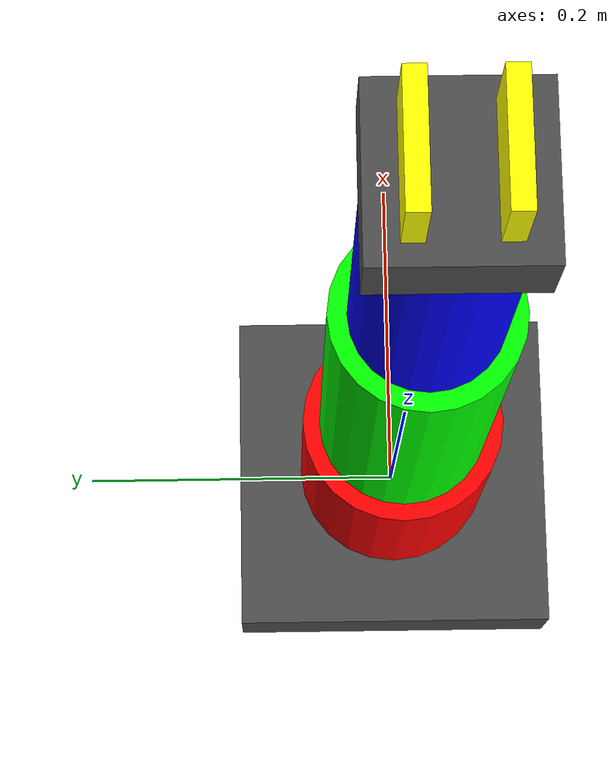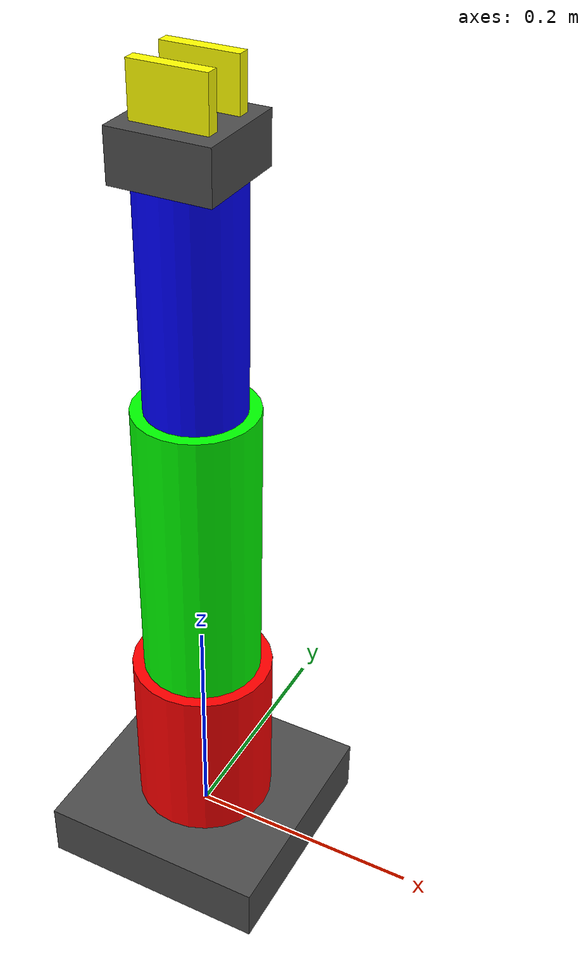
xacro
<?xml version="1.0"?>
<robot xmlns:xacro="http://www.ros.org/wiki/xacro" name="three_dof_arm_gripper">

  <xacro:property name="PI" value="3.141592653589793"/>

  <!-- World link (fixed reference) -->
  <link name="world"/>

  <!-- Fixed joint connecting world to base_link -->
  <joint name="world_joint" type="fixed">
    <parent link="world"/>
    <child link="base_link"/>
    <origin xyz="0 0 0" rpy="0 0 0"/>
  </joint>

  <!-- ########## Robot Base ########## -->
  <link name="base_link">
    <visual>
      <geometry>
        <box size="0.2 0.2 0.05"/>
      </geometry>
      <material name="dark_grey">
        <color rgba="0.3 0.3 0.3 1"/>
      </material>
    </visual>
    <collision>
      <geometry>
        <box size="0.2 0.2 0.05"/>
      </geometry>
    </collision>
    <inertial>
      <mass value="0.8"/>
      <inertia ixx="0.002" iyy="0.002" izz="0.002" ixy="0" ixz="0" iyz="0"/>
    </inertial>
  </link>

  <!-- Joint 1: base rotation (yaw) at top of base (Z = 0.025) -->
  <joint name="joint1" type="revolute">
    <parent link="base_link"/>
    <child link="link1"/>
    <axis xyz="0 0 1"/>
    <origin xyz="0 0 0.025" rpy="0 0 0"/>
    <limit lower="${-PI}" upper="${PI}" effort="100" velocity="1.5"/>
  </joint>

  <!-- Link 1: cylinder length 0.15, offset visual/collision to start at joint -->
  <link name="link1">
    <visual>
      <origin xyz="0 0 0.075" rpy="0 0 0"/>    <!-- half length up -->
      <geometry>
        <cylinder radius="0.06" length="0.15"/>
      </geometry>
      <material name="red">
        <color rgba="1 0 0 1"/>
      </material>
    </visual>
    <collision>
      <origin xyz="0 0 0.075" rpy="0 0 0"/>
      <geometry>
        <cylinder radius="0.06" length="0.15"/>
      </geometry>
    </collision>
    <inertial>
      <mass value="0.6"/>
      <inertia ixx="${0.6*(3*0.06*0.06 + 0.15*0.15)/12}"
               iyy="${0.6*(3*0.06*0.06 + 0.15*0.15)/12}"
               izz="${0.6*0.06*0.06/2}"
               ixy="0" ixz="0" iyz="0"/>
    </inertial>
  </link>

  <!-- Joint 2: shoulder pitch (horizontal Y axis), at top of link1 (Z = 0.15) -->
  <joint name="joint2" type="revolute">
    <parent link="link1"/>
    <child link="link2"/>
    <axis xyz="0 1 0"/>
    <origin xyz="0 0 0.15" rpy="0 0 0"/>    <!-- top of link1 (0.075 + 0.075) -->
    <limit lower="${-PI/2}" upper="${PI/2}" effort="80" velocity="1.5"/>
  </joint>

  <!-- Link 2: cylinder length 0.25, offset visual/collision -->
  <link name="link2">
    <visual>
      <origin xyz="0 0 0.125" rpy="0 0 0"/>   <!-- half length up -->
      <geometry>
        <cylinder radius="0.05" length="0.25"/>
      </geometry>
      <material name="green">
        <color rgba="0 1 0 1"/>
      </material>
    </visual>
    <collision>
      <origin xyz="0 0 0.125" rpy="0 0 0"/>
      <geometry>
        <cylinder radius="0.05" length="0.25"/>
      </geometry>
    </collision>
    <inertial>
      <mass value="0.8"/>
      <inertia ixx="${0.8*(3*0.05*0.05 + 0.25*0.25)/12}"
               iyy="${0.8*(3*0.05*0.05 + 0.25*0.25)/12}"
               izz="${0.8*0.05*0.05/2}"
               ixy="0" ixz="0" iyz="0"/>
    </inertial>
  </link>

  <!-- Joint 3: wrist pitch (same horizontal Y axis as joint2), at top of link2 (Z = 0.25) -->
  <joint name="joint3" type="revolute">
    <parent link="link2"/>
    <child link="link3"/>
    <axis xyz="0 1 0"/>          <!-- Horizontal Y axis -->
    <origin xyz="0 0 0.25" rpy="0 0 0"/>    <!-- top of link2 -->
    <limit lower="${-PI/2}" upper="${PI/2}" effort="60" velocity="1.5"/>
  </joint>

  <!-- Link 3: cylinder length 0.2, offset visual/collision -->
  <link name="link3">
    <visual>
      <origin xyz="0 0 0.1" rpy="0 0 0"/>     <!-- half length up -->
      <geometry>
        <cylinder radius="0.04" length="0.2"/>
      </geometry>
      <material name="blue">
        <color rgba="0 0 1 1"/>
      </material>
    </visual>
    <collision>
      <origin xyz="0 0 0.1" rpy="0 0 0"/>
      <geometry>
        <cylinder radius="0.04" length="0.2"/>
      </geometry>
    </collision>
    <inertial>
      <mass value="0.5"/>
      <inertia ixx="${0.5*(3*0.04*0.04 + 0.2*0.2)/12}"
               iyy="${0.5*(3*0.04*0.04 + 0.2*0.2)/12}"
               izz="${0.5*0.04*0.04/2}"
               ixy="0" ixz="0" iyz="0"/>
    </inertial>
  </link>

  <!-- Gripper base joint: revolute, same horizontal Y axis as joint2 & joint3 -->
  <joint name="gripper_base_joint" type="revolute">
    <parent link="link3"/>
    <child link="gripper_base"/>
    <axis xyz="0 1 0"/>                     <!-- Horizontal Y axis -->
    <origin xyz="0 0 0.2" rpy="0 0 0"/>     <!-- top of link3 -->
    <limit lower="${-PI/2}" upper="${PI/2}" effort="50" velocity="1.0"/>
  </joint>

  <link name="gripper_base">
    <visual>
      <geometry>
        <box size="0.08 0.08 0.04"/>
      </geometry>
      <material name="dark_grey">
        <color rgba="0.3 0.3 0.3 1"/>
      </material>
    </visual>
    <collision>
      <geometry>
        <box size="0.08 0.08 0.04"/>
      </geometry>
    </collision>
    <inertial>
      <mass value="0.2"/>
      <inertia ixx="0.0001" iyy="0.0001" izz="0.0001" ixy="0" ixz="0" iyz="0"/>
    </inertial>
  </link>

  <!-- ===== ALTERNATIVE SOLUTION: FINGER WITH X-AXIS ROTATION ===== -->
  <!-- Movable finger: rotates about X-axis for scissor-like closing motion -->
  <joint name="gripper_joint" type="revolute">
    <parent link="gripper_base"/>
    <child link="finger"/>
    <axis xyz="1 0 0"/>                     <!-- Rotate about X-axis for parallel closing -->
    <origin xyz="0 0.02 0.02" rpy="0 0 0"/> <!-- Offset in Y -->
    <limit lower="-0.5" upper="0.5" effort="10" velocity="2.0"/>
  </joint>

  <link name="finger">
    <visual>
      <geometry>
        <box size="0.06 0.01 0.08"/>        <!-- Original dimensions kept -->
      </geometry>
      <material name="yellow">
        <color rgba="1 1 0 1"/>
      </material>
    </visual>
    <collision>
      <geometry>
        <box size="0.06 0.01 0.08"/>
      </geometry>
    </collision>
    <inertial>
      <mass value="0.05"/>
      <inertia ixx="0.00002" iyy="0.00002" izz="0.00002" ixy="0" ixz="0" iyz="0"/>
    </inertial>
  </link>

  <!-- Fixed finger: offset in negative Y -->
  <joint name="fixed_finger_joint" type="fixed">
    <parent link="gripper_base"/>
    <child link="fixed_finger"/>
    <origin xyz="0 -0.02 0.02" rpy="0 0 0"/> <!-- Offset in negative Y -->
  </joint>

  <link name="fixed_finger">
    <visual>
      <geometry>
        <box size="0.06 0.01 0.08"/>        <!-- Same dimensions as movable finger -->
      </geometry>
      <material name="yellow">
        <color rgba="1 1 0 1"/>
      </material>
    </visual>
    <collision>
      <geometry>
        <box size="0.06 0.01 0.08"/>
      </geometry>
    </collision>
    <inertial>
      <mass value="0.05"/>
      <inertia ixx="0.00002" iyy="0.00002" izz="0.00002" ixy="0" ixz="0" iyz="0"/>
    </inertial>
  </link>

  <!-- ros2_control configuration -->
  <ros2_control name="GazeboSimSystem" type="system">
    <hardware>
      <plugin>gz_ros2_control/GazeboSimSystem</plugin>
    </hardware>
    <joint name="joint1">
      <command_interface name="position"/>
      <state_interface name="position"/>
      <state_interface name="velocity"/>
    </joint>
    <joint name="joint2">
      <command_interface name="position"/>
      <state_interface name="position"/>
      <state_interface name="velocity"/>
    </joint>
    <joint name="joint3">
      <command_interface name="position"/>
      <state_interface name="position"/>
      <state_interface name="velocity"/>
    </joint>
    <joint name="gripper_joint">
      <command_interface name="position"/>
      <state_interface name="position"/>
      <state_interface name="velocity"/>
    </joint>
  </ros2_control>

  <!-- Gazebo integration -->
  <gazebo>
    <plugin filename="gz_ros2_control-system" name="gz_ros2_control::GazeboSimROS2ControlPlugin">
      <parameters>$(find zayan)/config/arm_3dof_controllers.yaml</parameters>
    </plugin>
  </gazebo>

  <!-- Link materials -->
  <gazebo reference="link1">
    <material>Gazebo/Red</material>
  </gazebo>
  <gazebo reference="link2">
    <material>Gazebo/Green</material>
  </gazebo>
  <gazebo reference="link3">
    <material>Gazebo/Blue</material>
  </gazebo>
  <gazebo reference="gripper_base">
    <material>Gazebo/Grey</material>
  </gazebo>
  <gazebo reference="finger">
    <material>Gazebo/Yellow</material>
  </gazebo>
  <gazebo reference="fixed_finger">
    <material>Gazebo/Yellow</material>
  </gazebo>
</robot>
